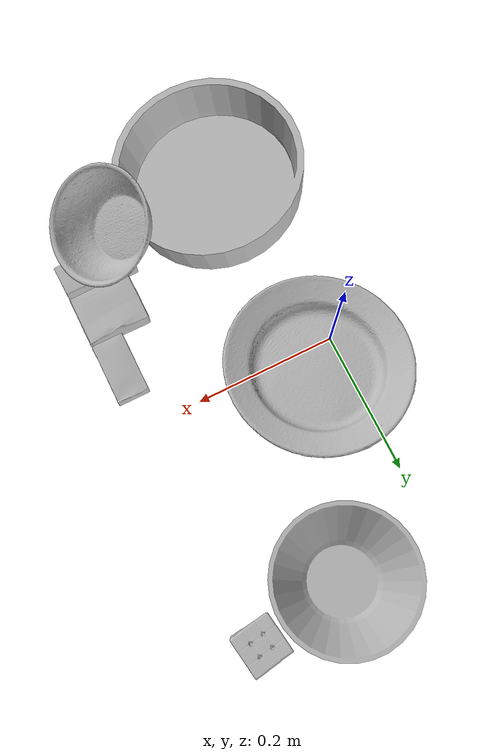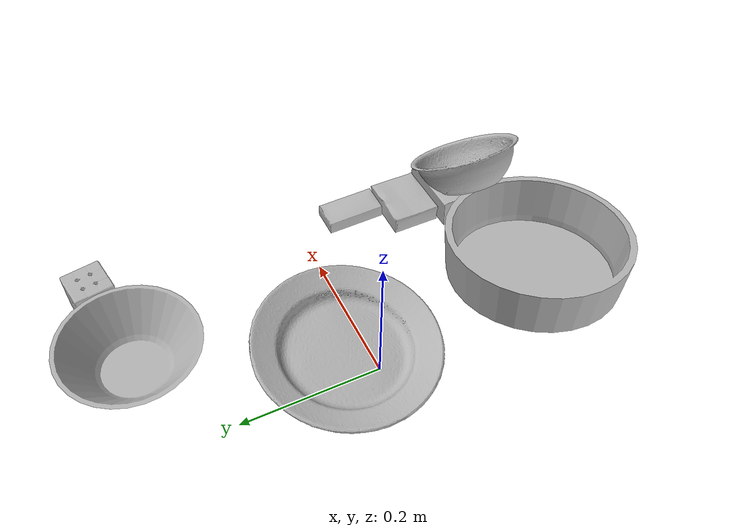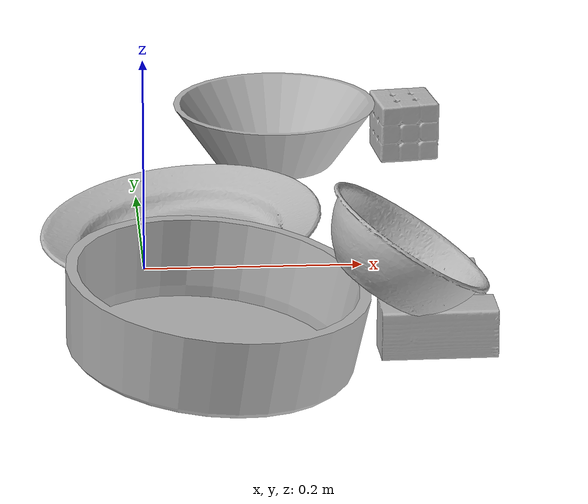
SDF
<sdf version="1.4">
  <world name="default">
    <light name="light1" type="point">
      <pose>0 0 1 0 0 0</pose>
      <diffuse>3 3 3 1</diffuse>
      <specular>3 3 3 1</specular>
    </light>
    <light name="light2" type="point">
      <pose>0 0.5 2 0 0 0</pose>
      <diffuse>1 1 1 1</diffuse>
      <specular>1 1 1 1</specular>
    </light>
    <light name="light3" type="point">
      <pose>0 0.5 2 0 0 0</pose>
      <diffuse>3 3 3 1</diffuse>
      <specular>3 3 3 1</specular>
    </light>
    <scene>
      <ambient>0.7 0.7 0.7</ambient>
    </scene>
    <model name="box1">
      <link name="link_box1">
        <collision name="default">
          <geometry>
            <mesh>
              <uri>model://cracker_box/collision_meshes/collision.obj</uri>
              <scale>0.25 0.25 0.25</scale>
            </mesh>
          </geometry>
          <surface>
            <friction>
              <ode>
                <mu>0.5</mu>
                <mu2>0.5</mu2>
              </ode>
            </friction>
          <contact>
        <ode>
            <max_vel>0</max_vel>
            <min_depth>0.0001</min_depth>
            <kp>1e8</kp>
        </ode>
    </contact></surface>
        </collision>
        <visual name="default">
          <geometry>
            <mesh>
              <uri>model://cracker_box/visual_meshes/visual.dae</uri>
              <scale>0.25 0.25 0.25</scale>
            </mesh>
          </geometry>
        </visual>
        <inertial>
          <mass>0.050503700971603394</mass>
          <pose>0.0002366037224419415 6.358561950037256e-05 -0.0004257383698131889 -0.00031620760376762643 -0.011106489600284392 0.0025467959332018085</pose>
          <inertia>
            <ixx>8.02868e-06</ixx>
            <iyy>1.3256925e-05</iyy>
            <izz>1.8918852e-05</izz>
            <ixy>0</ixy>
            <ixz>0</ixz>
            <iyz>0</iyz>
          </inertia>
        </inertial>
      </link>
      <pose>0.10495404899120331 0.07853192836046219 0.009451281279325485 -0.04003483703356949 -0.006610180221796013 2.5644651246947037</pose>
    </model>
    <model name="box11">
      <link name="link_box11">
        <collision name="default">
          <geometry>
            <mesh>
              <uri>model://rubiks_cube/collision_meshes/collision.obj</uri>
              <scale>1.0 1.0 1.0</scale>
            </mesh>
          </geometry>
          <surface>
            <friction>
              <ode>
                <mu>0.5</mu>
                <mu2>0.5</mu2>
              </ode>
            </friction>
          <contact>
        <ode>
            <max_vel>0</max_vel>
            <min_depth>0.0001</min_depth>
            <kp>1e8</kp>
        </ode>
    </contact></surface>
        </collision>
        <visual name="default">
          <geometry>
            <mesh>
              <uri>model://rubiks_cube/visual_meshes/visual.dae</uri>
              <scale>1.0 1.0 1.0</scale>
            </mesh>
          </geometry>
        </visual>
        <inertial>
          <mass>0.15071694552898407</mass>
          <pose>2.6721043468569405e-05 5.2569666877388954e-05 -7.264316082000732e-06 -0.05467297119259296 -0.09814009057422186 -0.034453654418704155</pose>
          <inertia>
            <ixx>8.328124e-05</ixx>
            <iyy>8.2892846e-05</iyy>
            <izz>8.397135e-05</izz>
            <ixy>0</ixy>
            <ixz>0</ixz>
            <iyz>0</iyz>
          </inertia>
        </inertial>
      </link>
      <pose>0.267682820558548 0.3173237442970276 0.02867896854877472 -4.168124686242292e-06 -1.4963597571727606e-06 0.1427647458256255</pose>
    </model>
    <model name="box2">
      <link name="link_box2">
        <collision name="default">
          <geometry>
            <mesh>
              <uri>model://gelatin_box/collision_meshes/collision.obj</uri>
              <scale>1.0 1.0 1.0</scale>
            </mesh>
          </geometry>
          <surface>
            <friction>
              <ode>
                <mu>0.5</mu>
                <mu2>0.5</mu2>
              </ode>
            </friction>
          <contact>
        <ode>
            <max_vel>0</max_vel>
            <min_depth>0.0001</min_depth>
            <kp>1e8</kp>
        </ode>
    </contact></surface>
        </collision>
        <visual name="default">
          <geometry>
            <mesh>
              <uri>model://gelatin_box/visual_meshes/visual.dae</uri>
              <scale>1.0 1.0 1.0</scale>
            </mesh>
          </geometry>
        </visual>
        <inertial>
          <mass>0.24173277616500854</mass>
          <pose>0.00043196187471039593 0.00011156872642459348 -0.0003640321083366871 -0.001050371835386973 -0.004755817297158009 0.016440553881960234</pose>
          <inertia>
            <ixx>0.00017064363</ixx>
            <iyy>0.00012188985</iyy>
            <izz>0.00025975762</izz>
            <ixy>0</ixy>
            <ixz>0</ixz>
            <iyz>0</iyz>
          </inertia>
        </inertial>
      </link>
      <pose>0.25519639253616333 -0.16769559681415558 0.01516831573098898 0.005596529438694804 -0.007303497435147854 1.5662637855577453</pose>
    </model>
    <model name="box21">
      <link name="link_box21">
        <collision name="default">
          <geometry>
            <mesh>
              <uri>model://wood_block/collision_meshes/collision.obj</uri>
              <scale>0.5 0.5 0.5</scale>
            </mesh>
          </geometry>
          <surface>
            <friction>
              <ode>
                <mu>0.5</mu>
                <mu2>0.5</mu2>
              </ode>
            </friction>
          <contact>
        <ode>
            <max_vel>0</max_vel>
            <min_depth>0.0001</min_depth>
            <kp>1e8</kp>
        </ode>
    </contact></surface>
        </collision>
        <visual name="default">
          <geometry>
            <mesh>
              <uri>model://wood_block/visual_meshes/visual.dae</uri>
              <scale>0.5 0.5 0.5</scale>
            </mesh>
          </geometry>
        </visual>
        <inertial>
          <mass>0.16252566874027252</mass>
          <pose>-2.906657982748584e-06 -0.000285404734313488 0.00013204291462898254 -0.05220975528683206 -0.005192696037335319 -0.006861378846526553</pose>
          <inertia>
            <ixx>5.437098e-05</ixx>
            <iyy>0.00017175796</iyy>
            <izz>0.00017111548</izz>
            <ixy>0</ixy>
            <ixz>0</ixz>
            <iyz>0</iyz>
          </inertia>
        </inertial>
      </link>
      <pose>0.247906893491745 -0.2265382558107376 0.022629424929618835 -0.005184728871921045 0.005705608747632897 0.02539954325553027</pose>
    </model>
    <model name="box3">
      <link name="link_box3">
        <collision name="default">
          <geometry>
            <mesh>
              <uri>model://pudding_box/collision_meshes/collision.obj</uri>
              <scale>0.5 0.5 0.5</scale>
            </mesh>
          </geometry>
          <surface>
            <friction>
              <ode>
                <mu>0.5</mu>
                <mu2>0.5</mu2>
              </ode>
            </friction>
          <contact>
        <ode>
            <max_vel>0</max_vel>
            <min_depth>0.0001</min_depth>
            <kp>1e8</kp>
        </ode>
    </contact></surface>
        </collision>
        <visual name="default">
          <geometry>
            <mesh>
              <uri>model://pudding_box/visual_meshes/visual.dae</uri>
              <scale>0.5 0.5 0.5</scale>
            </mesh>
          </geometry>
        </visual>
        <inertial>
          <mass>0.05576644837856293</mass>
          <pose>0.00024474109522998333 0.0004033942532259971 -0.0002594413817860186 0.005213101792545572 -0.006603798718575614 0.020079825159656634</pose>
          <inertia>
            <ixx>1.5760277e-05</ixx>
            <iyy>1.0603625e-05</iyy>
            <izz>2.3274164e-05</izz>
            <ixy>0</ixy>
            <ixz>0</ixz>
            <iyz>0</iyz>
          </inertia>
        </inertial>
      </link>
      <pose>0.011886050924658775 -0.23280088603496552 0.00997131410986185 0.03697243982666881 0.0018377002055489024 0.002775420126065876</pose>
    </model>
    <model name="box31">
      <link name="link_box31">
        <collision name="default">
          <geometry>
            <mesh>
              <uri>model://sugar_box/collision_meshes/collision.obj</uri>
              <scale>0.5 0.5 0.5</scale>
            </mesh>
          </geometry>
          <surface>
            <friction>
              <ode>
                <mu>0.5</mu>
                <mu2>0.5</mu2>
              </ode>
            </friction>
          <contact>
        <ode>
            <max_vel>0</max_vel>
            <min_depth>0.0001</min_depth>
            <kp>1e8</kp>
        </ode>
    </contact></surface>
        </collision>
        <visual name="default">
          <geometry>
            <mesh>
              <uri>model://sugar_box/visual_meshes/visual.dae</uri>
              <scale>0.5 0.5 0.5</scale>
            </mesh>
          </geometry>
        </visual>
        <inertial>
          <mass>0.1100529357790947</mass>
          <pose>0.0005171863595023751 1.924554817378521e-05 -0.00018182402709499002 -0.00040462641680988955 0.001050663522315131 0.0026153787888612426</pose>
          <inertia>
            <ixx>2.2923945e-05</ixx>
            <iyy>7.409492e-05</iyy>
            <izz>8.870046e-05</izz>
            <ixy>0</ixy>
            <ixz>0</ixz>
            <iyz>0</iyz>
          </inertia>
        </inertial>
      </link>
      <pose>0.2767511010169983 -0.08609200268983841 0.011399305425584316 0.0007747898225825752 -0.02343283347549059 -1.5759310690008168</pose>
    </model>
    <model name="plate1">
      <link name="link_plate1">
        <collision name="default">
          <geometry>
            <mesh>
              <uri>model://pan_tefal/collision_meshes/collision.obj</uri>
              <scale>1.0 1.0 1.0</scale>
            </mesh>
          </geometry>
          <surface>
            <friction>
              <ode>
                <mu>0.5</mu>
                <mu2>0.5</mu2>
              </ode>
            </friction>
          <contact>
        <ode>
            <max_vel>0</max_vel>
            <min_depth>0.0001</min_depth>
            <kp>1e8</kp>
        </ode>
    </contact></surface>
        </collision>
        <visual name="default">
          <geometry>
            <mesh>
              <uri>model://pan_tefal/visual_meshes/visual.dae</uri>
              <scale>1.0 1.0 1.0</scale>
            </mesh>
          </geometry>
        </visual>
        <inertial>
          <mass>1.207520604133606</mass>
          <pose>-0.00018002177239395678 3.2792409911053255e-05 -0.00851493701338768 0.0008190288495961148 -0.0003301407263612178 -0.3318541272495768</pose>
          <inertia>
            <ixx>0.008335457</ixx>
            <iyy>0.008389196</iyy>
            <izz>0.015343971</izz>
            <ixy>0</ixy>
            <ixz>0</ixz>
            <iyz>0</iyz>
          </inertia>
        </inertial>
      </link>
      <pose>0.04954426363110542 -0.27017584443092346 0.05290976166725159 0.12646719182700092 0.01013936030783812 0.8809438988981787</pose>
    </model>
    <model name="bowl1">
      <link name="link_bowl1">
        <collision name="default">
          <geometry>
            <mesh>
              <uri>model://bowl/collision_meshes/collision.obj</uri>
              <scale>1.0 1.0 1.0</scale>
            </mesh>
          </geometry>
          <surface>
            <friction>
              <ode>
                <mu>0.5</mu>
                <mu2>0.5</mu2>
              </ode>
            </friction>
          <contact>
        <ode>
            <max_vel>0</max_vel>
            <min_depth>0.0001</min_depth>
            <kp>1e8</kp>
        </ode>
    </contact></surface>
        </collision>
        <visual name="default">
          <geometry>
            <mesh>
              <uri>model://bowl/visual_meshes/visual.dae</uri>
              <scale>1.0 1.0 1.0</scale>
            </mesh>
          </geometry>
        </visual>
        <inertial>
          <mass>0.09256309270858765</mass>
          <pose>0.00020445158588699996 -0.001030202372930944 -0.0008042642730288208 -0.015764073075752352 0.01454679669645375 0.7140412125775129</pose>
          <inertia>
            <ixx>0.00021262471</ixx>
            <iyy>0.00020787389</iyy>
            <izz>0.00035770793</izz>
            <ixy>0</ixy>
            <ixz>0</ixz>
            <iyz>0</iyz>
          </inertia>
        </inertial>
      </link>
      <pose>0.20866748690605164 -0.24724580347537994 0.09346400201320648 0.17537077456651187 0.5637927276662608 0.37809359450599656</pose>
    </model>
    <model name="plate2">
      <link name="link_plate2">
        <collision name="default">
          <geometry>
            <mesh>
              <uri>model://plate/collision_meshes/collision.obj</uri>
              <scale>1.0 1.0 1.0</scale>
            </mesh>
          </geometry>
          <surface>
            <friction>
              <ode>
                <mu>0.5</mu>
                <mu2>0.5</mu2>
              </ode>
            </friction>
          <contact>
        <ode>
            <max_vel>0</max_vel>
            <min_depth>0.0001</min_depth>
            <kp>1e8</kp>
        </ode>
    </contact></surface>
        </collision>
        <visual name="default">
          <geometry>
            <mesh>
              <uri>model://plate/visual_meshes/visual.dae</uri>
              <scale>1.0 1.0 1.0</scale>
            </mesh>
          </geometry>
        </visual>
        <inertial>
          <mass>0.22150008380413055</mass>
          <pose>-0.0006044640904292464 0.0002782581141218543 -0.0010561984963715076 0.0022187839711676756 -0.00322547471274247 0.4526095389577293</pose>
          <inertia>
            <ixx>0.0010361817</ixx>
            <iyy>0.0010262709</iyy>
            <izz>0.0020266173</izz>
            <ixy>0</ixy>
            <ixz>0</ixz>
            <iyz>0</iyz>
          </inertia>
        </inertial>
      </link>
      <pose>0.03598657622933388 0.03207290172576904 0.022976137697696686 0.024692380562193483 0.12707263397678764 -2.276891453831249</pose>
    </model>
    <model name="bowl2">
      <link name="link_bowl2">
        <collision name="default">
          <geometry>
            <mesh>
              <uri>model://bowl_a/collision_meshes/collision.obj</uri>
              <scale>1.0 1.0 1.0</scale>
            </mesh>
          </geometry>
          <surface>
            <friction>
              <ode>
                <mu>0.5</mu>
                <mu2>0.5</mu2>
              </ode>
            </friction>
          <contact>
        <ode>
            <max_vel>0</max_vel>
            <min_depth>0.0001</min_depth>
            <kp>1e8</kp>
        </ode>
    </contact></surface>
        </collision>
        <visual name="default">
          <geometry>
            <mesh>
              <uri>model://bowl_a/visual_meshes/visual.dae</uri>
              <scale>1.0 1.0 1.0</scale>
            </mesh>
          </geometry>
        </visual>
        <inertial>
          <mass>0.4869906008243561</mass>
          <pose>0.0002786735713016242 4.731232547783293e-05 -0.001376529224216938 -0.0009805388639875933 -0.0010938169956893674 -0.19123322132810686</pose>
          <inertia>
            <ixx>0.0013864844</ixx>
            <iyy>0.0013949967</iyy>
            <izz>0.0024659163</izz>
            <ixy>0</ixy>
            <ixz>0</ixz>
            <iyz>0</iyz>
          </inertia>
        </inertial>
      </link>
      <pose>0.1386914849281311 0.2952937185764313 0.030382994562387466 -2.4422576593886868e-08 -2.668792620686996e-08 -0.6802733987191404</pose>
    </model>
  <physics type="ode">
      <max_contacts>50</max_contacts>
      <ode>
        <solver>
          <type>quick</type>
          <iters>75</iters>
        </solver>
        <constraints>
          <contact_max_correcting_vel>0</contact_max_correcting_vel>
          <contact_surface_layer>0</contact_surface_layer>
        </constraints>
      </ode>
    </physics></world>
</sdf>
